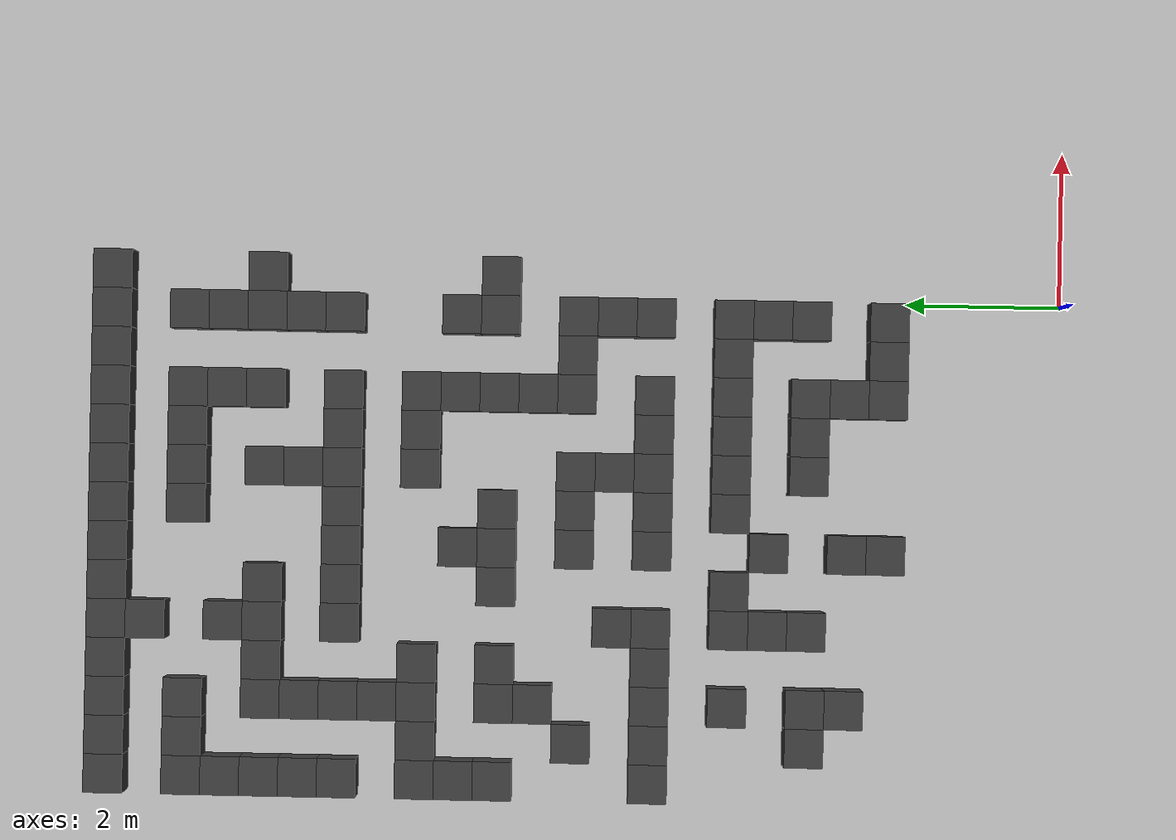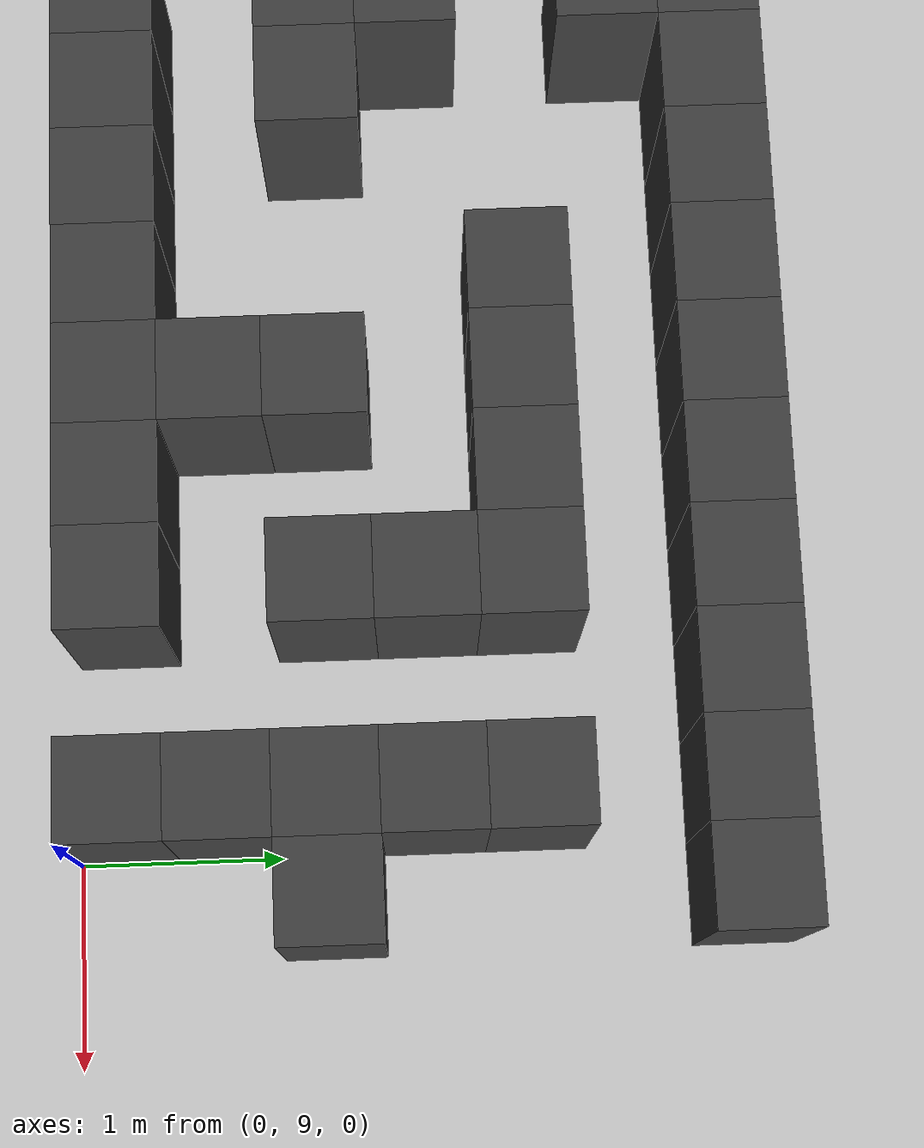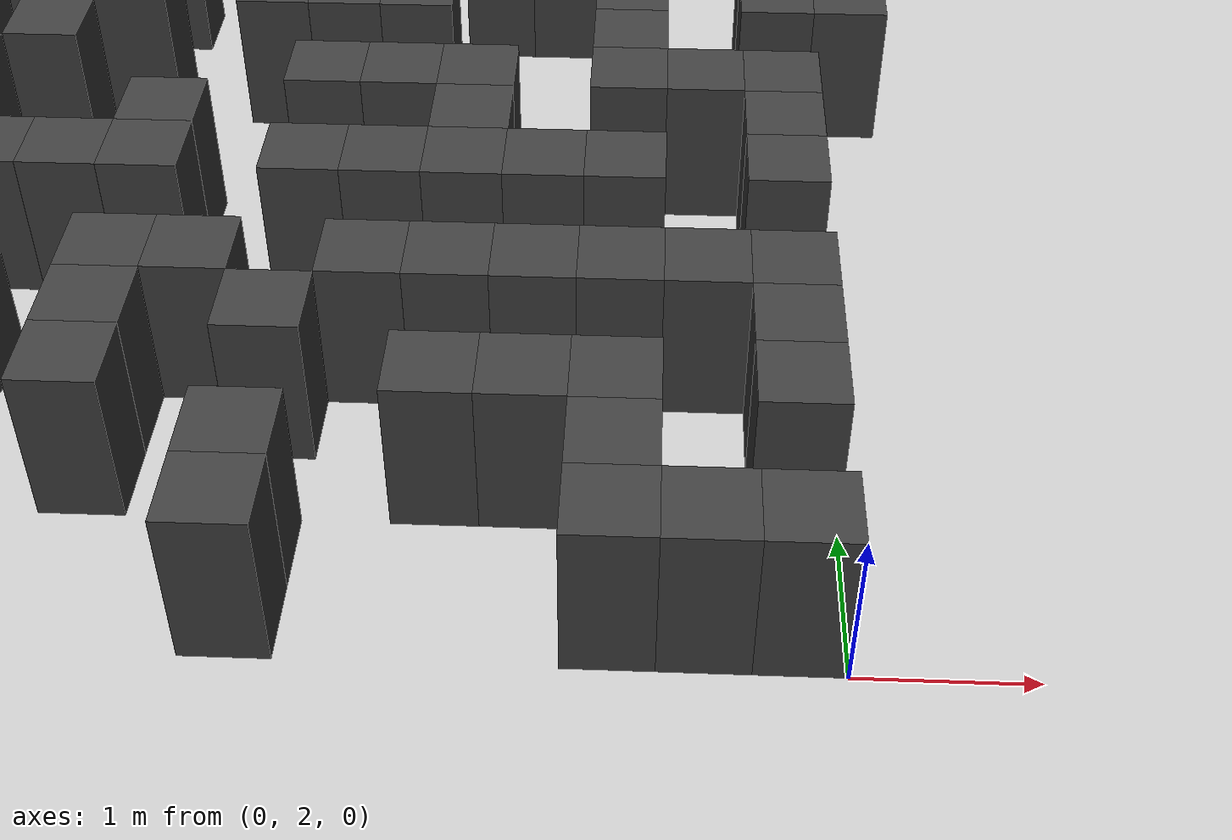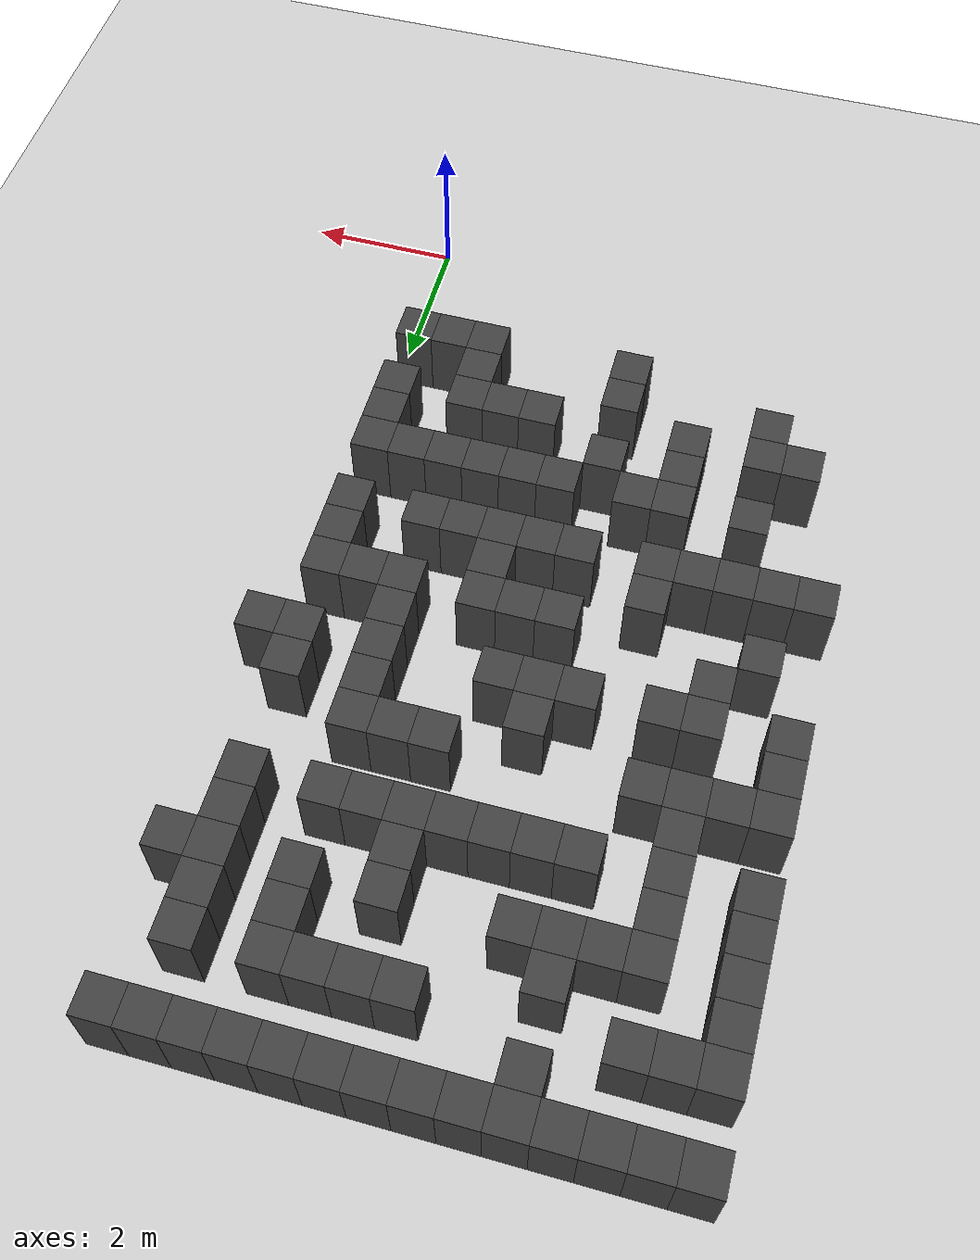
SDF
<sdf version="1.7">
 <world name="map_15168">
  <model name="ground_plane">
   <static>true</static>
   <link name="link">
    <collision name="collision">
     <geometry><plane><normal>0 0 1</normal><size>200 200</size></plane></geometry>
    </collision>
    <visual name="visual">
     <geometry><plane><normal>0 0 1</normal><size>200 200</size></plane></geometry>
     <material><ambient>0.8 0.8 0.8 1</ambient><diffuse>0.8 0.8 0.8 1</diffuse></material>
    </visual>
   </link>
  </model>
  <model name="maze_environment">
   <static>true</static>
   <link name="wall_12">
    <pose>-6.250 12.250 0.500 0 0 0</pose>
    <collision name="col"><geometry><box><size>0.5 0.5 1.0</size></box></geometry></collision>
    <visual name="vis">
     <geometry><box><size>0.5 0.5 1.0</size></box></geometry>
     <material><ambient>0.15 0.15 0.15 1</ambient><diffuse>0.25 0.25 0.25 1</diffuse></material>
    </visual>
   </link>
   <link name="wall_13">
    <pose>-5.750 12.250 0.500 0 0 0</pose>
    <collision name="col"><geometry><box><size>0.5 0.5 1.0</size></box></geometry></collision>
    <visual name="vis">
     <geometry><box><size>0.5 0.5 1.0</size></box></geometry>
     <material><ambient>0.15 0.15 0.15 1</ambient><diffuse>0.25 0.25 0.25 1</diffuse></material>
    </visual>
   </link>
   <link name="wall_14">
    <pose>-5.250 12.250 0.500 0 0 0</pose>
    <collision name="col"><geometry><box><size>0.5 0.5 1.0</size></box></geometry></collision>
    <visual name="vis">
     <geometry><box><size>0.5 0.5 1.0</size></box></geometry>
     <material><ambient>0.15 0.15 0.15 1</ambient><diffuse>0.25 0.25 0.25 1</diffuse></material>
    </visual>
   </link>
   <link name="wall_15">
    <pose>-4.750 12.250 0.500 0 0 0</pose>
    <collision name="col"><geometry><box><size>0.5 0.5 1.0</size></box></geometry></collision>
    <visual name="vis">
     <geometry><box><size>0.5 0.5 1.0</size></box></geometry>
     <material><ambient>0.15 0.15 0.15 1</ambient><diffuse>0.25 0.25 0.25 1</diffuse></material>
    </visual>
   </link>
   <link name="wall_16">
    <pose>-4.250 12.250 0.500 0 0 0</pose>
    <collision name="col"><geometry><box><size>0.5 0.5 1.0</size></box></geometry></collision>
    <visual name="vis">
     <geometry><box><size>0.5 0.5 1.0</size></box></geometry>
     <material><ambient>0.15 0.15 0.15 1</ambient><diffuse>0.25 0.25 0.25 1</diffuse></material>
    </visual>
   </link>
   <link name="wall_17">
    <pose>-3.750 12.250 0.500 0 0 0</pose>
    <collision name="col"><geometry><box><size>0.5 0.5 1.0</size></box></geometry></collision>
    <visual name="vis">
     <geometry><box><size>0.5 0.5 1.0</size></box></geometry>
     <material><ambient>0.15 0.15 0.15 1</ambient><diffuse>0.25 0.25 0.25 1</diffuse></material>
    </visual>
   </link>
   <link name="wall_18">
    <pose>-3.250 12.250 0.500 0 0 0</pose>
    <collision name="col"><geometry><box><size>0.5 0.5 1.0</size></box></geometry></collision>
    <visual name="vis">
     <geometry><box><size>0.5 0.5 1.0</size></box></geometry>
     <material><ambient>0.15 0.15 0.15 1</ambient><diffuse>0.25 0.25 0.25 1</diffuse></material>
    </visual>
   </link>
   <link name="wall_19">
    <pose>-2.750 12.250 0.500 0 0 0</pose>
    <collision name="col"><geometry><box><size>0.5 0.5 1.0</size></box></geometry></collision>
    <visual name="vis">
     <geometry><box><size>0.5 0.5 1.0</size></box></geometry>
     <material><ambient>0.15 0.15 0.15 1</ambient><diffuse>0.25 0.25 0.25 1</diffuse></material>
    </visual>
   </link>
   <link name="wall_20">
    <pose>-2.250 12.250 0.500 0 0 0</pose>
    <collision name="col"><geometry><box><size>0.5 0.5 1.0</size></box></geometry></collision>
    <visual name="vis">
     <geometry><box><size>0.5 0.5 1.0</size></box></geometry>
     <material><ambient>0.15 0.15 0.15 1</ambient><diffuse>0.25 0.25 0.25 1</diffuse></material>
    </visual>
   </link>
   <link name="wall_21">
    <pose>-1.750 12.250 0.500 0 0 0</pose>
    <collision name="col"><geometry><box><size>0.5 0.5 1.0</size></box></geometry></collision>
    <visual name="vis">
     <geometry><box><size>0.5 0.5 1.0</size></box></geometry>
     <material><ambient>0.15 0.15 0.15 1</ambient><diffuse>0.25 0.25 0.25 1</diffuse></material>
    </visual>
   </link>
   <link name="wall_22">
    <pose>-1.250 12.250 0.500 0 0 0</pose>
    <collision name="col"><geometry><box><size>0.5 0.5 1.0</size></box></geometry></collision>
    <visual name="vis">
     <geometry><box><size>0.5 0.5 1.0</size></box></geometry>
     <material><ambient>0.15 0.15 0.15 1</ambient><diffuse>0.25 0.25 0.25 1</diffuse></material>
    </visual>
   </link>
   <link name="wall_23">
    <pose>-0.750 12.250 0.500 0 0 0</pose>
    <collision name="col"><geometry><box><size>0.5 0.5 1.0</size></box></geometry></collision>
    <visual name="vis">
     <geometry><box><size>0.5 0.5 1.0</size></box></geometry>
     <material><ambient>0.15 0.15 0.15 1</ambient><diffuse>0.25 0.25 0.25 1</diffuse></material>
    </visual>
   </link>
   <link name="wall_24">
    <pose>-0.250 12.250 0.500 0 0 0</pose>
    <collision name="col"><geometry><box><size>0.5 0.5 1.0</size></box></geometry></collision>
    <visual name="vis">
     <geometry><box><size>0.5 0.5 1.0</size></box></geometry>
     <material><ambient>0.15 0.15 0.15 1</ambient><diffuse>0.25 0.25 0.25 1</diffuse></material>
    </visual>
   </link>
   <link name="wall_25">
    <pose>0.250 12.250 0.500 0 0 0</pose>
    <collision name="col"><geometry><box><size>0.5 0.5 1.0</size></box></geometry></collision>
    <visual name="vis">
     <geometry><box><size>0.5 0.5 1.0</size></box></geometry>
     <material><ambient>0.15 0.15 0.15 1</ambient><diffuse>0.25 0.25 0.25 1</diffuse></material>
    </visual>
   </link>
   <link name="wall_53">
    <pose>-4.250 11.750 0.500 0 0 0</pose>
    <collision name="col"><geometry><box><size>0.5 0.5 1.0</size></box></geometry></collision>
    <visual name="vis">
     <geometry><box><size>0.5 0.5 1.0</size></box></geometry>
     <material><ambient>0.15 0.15 0.15 1</ambient><diffuse>0.25 0.25 0.25 1</diffuse></material>
    </visual>
   </link>
   <link name="wall_67">
    <pose>-6.250 11.250 0.500 0 0 0</pose>
    <collision name="col"><geometry><box><size>0.5 0.5 1.0</size></box></geometry></collision>
    <visual name="vis">
     <geometry><box><size>0.5 0.5 1.0</size></box></geometry>
     <material><ambient>0.15 0.15 0.15 1</ambient><diffuse>0.25 0.25 0.25 1</diffuse></material>
    </visual>
   </link>
   <link name="wall_68">
    <pose>-5.750 11.250 0.500 0 0 0</pose>
    <collision name="col"><geometry><box><size>0.5 0.5 1.0</size></box></geometry></collision>
    <visual name="vis">
     <geometry><box><size>0.5 0.5 1.0</size></box></geometry>
     <material><ambient>0.15 0.15 0.15 1</ambient><diffuse>0.25 0.25 0.25 1</diffuse></material>
    </visual>
   </link>
   <link name="wall_69">
    <pose>-5.250 11.250 0.500 0 0 0</pose>
    <collision name="col"><geometry><box><size>0.5 0.5 1.0</size></box></geometry></collision>
    <visual name="vis">
     <geometry><box><size>0.5 0.5 1.0</size></box></geometry>
     <material><ambient>0.15 0.15 0.15 1</ambient><diffuse>0.25 0.25 0.25 1</diffuse></material>
    </visual>
   </link>
   <link name="wall_70">
    <pose>-2.750 11.250 0.500 0 0 0</pose>
    <collision name="col"><geometry><box><size>0.5 0.5 1.0</size></box></geometry></collision>
    <visual name="vis">
     <geometry><box><size>0.5 0.5 1.0</size></box></geometry>
     <material><ambient>0.15 0.15 0.15 1</ambient><diffuse>0.25 0.25 0.25 1</diffuse></material>
    </visual>
   </link>
   <link name="wall_71">
    <pose>-2.250 11.250 0.500 0 0 0</pose>
    <collision name="col"><geometry><box><size>0.5 0.5 1.0</size></box></geometry></collision>
    <visual name="vis">
     <geometry><box><size>0.5 0.5 1.0</size></box></geometry>
     <material><ambient>0.15 0.15 0.15 1</ambient><diffuse>0.25 0.25 0.25 1</diffuse></material>
    </visual>
   </link>
   <link name="wall_72">
    <pose>-1.750 11.250 0.500 0 0 0</pose>
    <collision name="col"><geometry><box><size>0.5 0.5 1.0</size></box></geometry></collision>
    <visual name="vis">
     <geometry><box><size>0.5 0.5 1.0</size></box></geometry>
     <material><ambient>0.15 0.15 0.15 1</ambient><diffuse>0.25 0.25 0.25 1</diffuse></material>
    </visual>
   </link>
   <link name="wall_73">
    <pose>-1.250 11.250 0.500 0 0 0</pose>
    <collision name="col"><geometry><box><size>0.5 0.5 1.0</size></box></geometry></collision>
    <visual name="vis">
     <geometry><box><size>0.5 0.5 1.0</size></box></geometry>
     <material><ambient>0.15 0.15 0.15 1</ambient><diffuse>0.25 0.25 0.25 1</diffuse></material>
    </visual>
   </link>
   <link name="wall_74">
    <pose>-0.250 11.250 0.500 0 0 0</pose>
    <collision name="col"><geometry><box><size>0.5 0.5 1.0</size></box></geometry></collision>
    <visual name="vis">
     <geometry><box><size>0.5 0.5 1.0</size></box></geometry>
     <material><ambient>0.15 0.15 0.15 1</ambient><diffuse>0.25 0.25 0.25 1</diffuse></material>
    </visual>
   </link>
   <link name="wall_93">
    <pose>-6.250 10.750 0.500 0 0 0</pose>
    <collision name="col"><geometry><box><size>0.5 0.5 1.0</size></box></geometry></collision>
    <visual name="vis">
     <geometry><box><size>0.5 0.5 1.0</size></box></geometry>
     <material><ambient>0.15 0.15 0.15 1</ambient><diffuse>0.25 0.25 0.25 1</diffuse></material>
    </visual>
   </link>
   <link name="wall_94">
    <pose>-4.250 10.750 0.500 0 0 0</pose>
    <collision name="col"><geometry><box><size>0.5 0.5 1.0</size></box></geometry></collision>
    <visual name="vis">
     <geometry><box><size>0.5 0.5 1.0</size></box></geometry>
     <material><ambient>0.15 0.15 0.15 1</ambient><diffuse>0.25 0.25 0.25 1</diffuse></material>
    </visual>
   </link>
   <link name="wall_95">
    <pose>-1.250 10.750 0.500 0 0 0</pose>
    <collision name="col"><geometry><box><size>0.5 0.5 1.0</size></box></geometry></collision>
    <visual name="vis">
     <geometry><box><size>0.5 0.5 1.0</size></box></geometry>
     <material><ambient>0.15 0.15 0.15 1</ambient><diffuse>0.25 0.25 0.25 1</diffuse></material>
    </visual>
   </link>
   <link name="wall_96">
    <pose>-0.250 10.750 0.500 0 0 0</pose>
    <collision name="col"><geometry><box><size>0.5 0.5 1.0</size></box></geometry></collision>
    <visual name="vis">
     <geometry><box><size>0.5 0.5 1.0</size></box></geometry>
     <material><ambient>0.15 0.15 0.15 1</ambient><diffuse>0.25 0.25 0.25 1</diffuse></material>
    </visual>
   </link>
   <link name="wall_114">
    <pose>-6.250 10.250 0.500 0 0 0</pose>
    <collision name="col"><geometry><box><size>0.5 0.5 1.0</size></box></geometry></collision>
    <visual name="vis">
     <geometry><box><size>0.5 0.5 1.0</size></box></geometry>
     <material><ambient>0.15 0.15 0.15 1</ambient><diffuse>0.25 0.25 0.25 1</diffuse></material>
    </visual>
   </link>
   <link name="wall_115">
    <pose>-5.250 10.250 0.500 0 0 0</pose>
    <collision name="col"><geometry><box><size>0.5 0.5 1.0</size></box></geometry></collision>
    <visual name="vis">
     <geometry><box><size>0.5 0.5 1.0</size></box></geometry>
     <material><ambient>0.15 0.15 0.15 1</ambient><diffuse>0.25 0.25 0.25 1</diffuse></material>
    </visual>
   </link>
   <link name="wall_116">
    <pose>-4.750 10.250 0.500 0 0 0</pose>
    <collision name="col"><geometry><box><size>0.5 0.5 1.0</size></box></geometry></collision>
    <visual name="vis">
     <geometry><box><size>0.5 0.5 1.0</size></box></geometry>
     <material><ambient>0.15 0.15 0.15 1</ambient><diffuse>0.25 0.25 0.25 1</diffuse></material>
    </visual>
   </link>
   <link name="wall_117">
    <pose>-4.250 10.250 0.500 0 0 0</pose>
    <collision name="col"><geometry><box><size>0.5 0.5 1.0</size></box></geometry></collision>
    <visual name="vis">
     <geometry><box><size>0.5 0.5 1.0</size></box></geometry>
     <material><ambient>0.15 0.15 0.15 1</ambient><diffuse>0.25 0.25 0.25 1</diffuse></material>
    </visual>
   </link>
   <link name="wall_118">
    <pose>-3.750 10.250 0.500 0 0 0</pose>
    <collision name="col"><geometry><box><size>0.5 0.5 1.0</size></box></geometry></collision>
    <visual name="vis">
     <geometry><box><size>0.5 0.5 1.0</size></box></geometry>
     <material><ambient>0.15 0.15 0.15 1</ambient><diffuse>0.25 0.25 0.25 1</diffuse></material>
    </visual>
   </link>
   <link name="wall_119">
    <pose>-2.250 10.250 0.500 0 0 0</pose>
    <collision name="col"><geometry><box><size>0.5 0.5 1.0</size></box></geometry></collision>
    <visual name="vis">
     <geometry><box><size>0.5 0.5 1.0</size></box></geometry>
     <material><ambient>0.15 0.15 0.15 1</ambient><diffuse>0.25 0.25 0.25 1</diffuse></material>
    </visual>
   </link>
   <link name="wall_120">
    <pose>-1.250 10.250 0.500 0 0 0</pose>
    <collision name="col"><geometry><box><size>0.5 0.5 1.0</size></box></geometry></collision>
    <visual name="vis">
     <geometry><box><size>0.5 0.5 1.0</size></box></geometry>
     <material><ambient>0.15 0.15 0.15 1</ambient><diffuse>0.25 0.25 0.25 1</diffuse></material>
    </visual>
   </link>
   <link name="wall_121">
    <pose>-0.250 10.250 0.500 0 0 0</pose>
    <collision name="col"><geometry><box><size>0.5 0.5 1.0</size></box></geometry></collision>
    <visual name="vis">
     <geometry><box><size>0.5 0.5 1.0</size></box></geometry>
     <material><ambient>0.15 0.15 0.15 1</ambient><diffuse>0.25 0.25 0.25 1</diffuse></material>
    </visual>
   </link>
   <link name="wall_122">
    <pose>0.250 10.250 0.500 0 0 0</pose>
    <collision name="col"><geometry><box><size>0.5 0.5 1.0</size></box></geometry></collision>
    <visual name="vis">
     <geometry><box><size>0.5 0.5 1.0</size></box></geometry>
     <material><ambient>0.15 0.15 0.15 1</ambient><diffuse>0.25 0.25 0.25 1</diffuse></material>
    </visual>
   </link>
   <link name="wall_141">
    <pose>-6.250 9.750 0.500 0 0 0</pose>
    <collision name="col"><geometry><box><size>0.5 0.5 1.0</size></box></geometry></collision>
    <visual name="vis">
     <geometry><box><size>0.5 0.5 1.0</size></box></geometry>
     <material><ambient>0.15 0.15 0.15 1</ambient><diffuse>0.25 0.25 0.25 1</diffuse></material>
    </visual>
   </link>
   <link name="wall_142">
    <pose>-5.250 9.750 0.500 0 0 0</pose>
    <collision name="col"><geometry><box><size>0.5 0.5 1.0</size></box></geometry></collision>
    <visual name="vis">
     <geometry><box><size>0.5 0.5 1.0</size></box></geometry>
     <material><ambient>0.15 0.15 0.15 1</ambient><diffuse>0.25 0.25 0.25 1</diffuse></material>
    </visual>
   </link>
   <link name="wall_143">
    <pose>-2.250 9.750 0.500 0 0 0</pose>
    <collision name="col"><geometry><box><size>0.5 0.5 1.0</size></box></geometry></collision>
    <visual name="vis">
     <geometry><box><size>0.5 0.5 1.0</size></box></geometry>
     <material><ambient>0.15 0.15 0.15 1</ambient><diffuse>0.25 0.25 0.25 1</diffuse></material>
    </visual>
   </link>
   <link name="wall_144">
    <pose>-0.250 9.750 0.500 0 0 0</pose>
    <collision name="col"><geometry><box><size>0.5 0.5 1.0</size></box></geometry></collision>
    <visual name="vis">
     <geometry><box><size>0.5 0.5 1.0</size></box></geometry>
     <material><ambient>0.15 0.15 0.15 1</ambient><diffuse>0.25 0.25 0.25 1</diffuse></material>
    </visual>
   </link>
   <link name="wall_161">
    <pose>-6.250 9.250 0.500 0 0 0</pose>
    <collision name="col"><geometry><box><size>0.5 0.5 1.0</size></box></geometry></collision>
    <visual name="vis">
     <geometry><box><size>0.5 0.5 1.0</size></box></geometry>
     <material><ambient>0.15 0.15 0.15 1</ambient><diffuse>0.25 0.25 0.25 1</diffuse></material>
    </visual>
   </link>
   <link name="wall_162">
    <pose>-5.250 9.250 0.500 0 0 0</pose>
    <collision name="col"><geometry><box><size>0.5 0.5 1.0</size></box></geometry></collision>
    <visual name="vis">
     <geometry><box><size>0.5 0.5 1.0</size></box></geometry>
     <material><ambient>0.15 0.15 0.15 1</ambient><diffuse>0.25 0.25 0.25 1</diffuse></material>
    </visual>
   </link>
   <link name="wall_163">
    <pose>-4.250 9.250 0.500 0 0 0</pose>
    <collision name="col"><geometry><box><size>0.5 0.5 1.0</size></box></geometry></collision>
    <visual name="vis">
     <geometry><box><size>0.5 0.5 1.0</size></box></geometry>
     <material><ambient>0.15 0.15 0.15 1</ambient><diffuse>0.25 0.25 0.25 1</diffuse></material>
    </visual>
   </link>
   <link name="wall_164">
    <pose>-3.750 9.250 0.500 0 0 0</pose>
    <collision name="col"><geometry><box><size>0.5 0.5 1.0</size></box></geometry></collision>
    <visual name="vis">
     <geometry><box><size>0.5 0.5 1.0</size></box></geometry>
     <material><ambient>0.15 0.15 0.15 1</ambient><diffuse>0.25 0.25 0.25 1</diffuse></material>
    </visual>
   </link>
   <link name="wall_165">
    <pose>-3.250 9.250 0.500 0 0 0</pose>
    <collision name="col"><geometry><box><size>0.5 0.5 1.0</size></box></geometry></collision>
    <visual name="vis">
     <geometry><box><size>0.5 0.5 1.0</size></box></geometry>
     <material><ambient>0.15 0.15 0.15 1</ambient><diffuse>0.25 0.25 0.25 1</diffuse></material>
    </visual>
   </link>
   <link name="wall_166">
    <pose>-2.750 9.250 0.500 0 0 0</pose>
    <collision name="col"><geometry><box><size>0.5 0.5 1.0</size></box></geometry></collision>
    <visual name="vis">
     <geometry><box><size>0.5 0.5 1.0</size></box></geometry>
     <material><ambient>0.15 0.15 0.15 1</ambient><diffuse>0.25 0.25 0.25 1</diffuse></material>
    </visual>
   </link>
   <link name="wall_167">
    <pose>-2.250 9.250 0.500 0 0 0</pose>
    <collision name="col"><geometry><box><size>0.5 0.5 1.0</size></box></geometry></collision>
    <visual name="vis">
     <geometry><box><size>0.5 0.5 1.0</size></box></geometry>
     <material><ambient>0.15 0.15 0.15 1</ambient><diffuse>0.25 0.25 0.25 1</diffuse></material>
    </visual>
   </link>
   <link name="wall_168">
    <pose>-1.750 9.250 0.500 0 0 0</pose>
    <collision name="col"><geometry><box><size>0.5 0.5 1.0</size></box></geometry></collision>
    <visual name="vis">
     <geometry><box><size>0.5 0.5 1.0</size></box></geometry>
     <material><ambient>0.15 0.15 0.15 1</ambient><diffuse>0.25 0.25 0.25 1</diffuse></material>
    </visual>
   </link>
   <link name="wall_169">
    <pose>-1.250 9.250 0.500 0 0 0</pose>
    <collision name="col"><geometry><box><size>0.5 0.5 1.0</size></box></geometry></collision>
    <visual name="vis">
     <geometry><box><size>0.5 0.5 1.0</size></box></geometry>
     <material><ambient>0.15 0.15 0.15 1</ambient><diffuse>0.25 0.25 0.25 1</diffuse></material>
    </visual>
   </link>
   <link name="wall_170">
    <pose>-0.250 9.250 0.500 0 0 0</pose>
    <collision name="col"><geometry><box><size>0.5 0.5 1.0</size></box></geometry></collision>
    <visual name="vis">
     <geometry><box><size>0.5 0.5 1.0</size></box></geometry>
     <material><ambient>0.15 0.15 0.15 1</ambient><diffuse>0.25 0.25 0.25 1</diffuse></material>
    </visual>
   </link>
   <link name="wall_192">
    <pose>-5.250 8.750 0.500 0 0 0</pose>
    <collision name="col"><geometry><box><size>0.5 0.5 1.0</size></box></geometry></collision>
    <visual name="vis">
     <geometry><box><size>0.5 0.5 1.0</size></box></geometry>
     <material><ambient>0.15 0.15 0.15 1</ambient><diffuse>0.25 0.25 0.25 1</diffuse></material>
    </visual>
   </link>
   <link name="wall_210">
    <pose>-6.250 8.250 0.500 0 0 0</pose>
    <collision name="col"><geometry><box><size>0.5 0.5 1.0</size></box></geometry></collision>
    <visual name="vis">
     <geometry><box><size>0.5 0.5 1.0</size></box></geometry>
     <material><ambient>0.15 0.15 0.15 1</ambient><diffuse>0.25 0.25 0.25 1</diffuse></material>
    </visual>
   </link>
   <link name="wall_211">
    <pose>-5.750 8.250 0.500 0 0 0</pose>
    <collision name="col"><geometry><box><size>0.5 0.5 1.0</size></box></geometry></collision>
    <visual name="vis">
     <geometry><box><size>0.5 0.5 1.0</size></box></geometry>
     <material><ambient>0.15 0.15 0.15 1</ambient><diffuse>0.25 0.25 0.25 1</diffuse></material>
    </visual>
   </link>
   <link name="wall_212">
    <pose>-5.250 8.250 0.500 0 0 0</pose>
    <collision name="col"><geometry><box><size>0.5 0.5 1.0</size></box></geometry></collision>
    <visual name="vis">
     <geometry><box><size>0.5 0.5 1.0</size></box></geometry>
     <material><ambient>0.15 0.15 0.15 1</ambient><diffuse>0.25 0.25 0.25 1</diffuse></material>
    </visual>
   </link>
   <link name="wall_213">
    <pose>-4.750 8.250 0.500 0 0 0</pose>
    <collision name="col"><geometry><box><size>0.5 0.5 1.0</size></box></geometry></collision>
    <visual name="vis">
     <geometry><box><size>0.5 0.5 1.0</size></box></geometry>
     <material><ambient>0.15 0.15 0.15 1</ambient><diffuse>0.25 0.25 0.25 1</diffuse></material>
    </visual>
   </link>
   <link name="wall_214">
    <pose>-2.250 8.250 0.500 0 0 0</pose>
    <collision name="col"><geometry><box><size>0.5 0.5 1.0</size></box></geometry></collision>
    <visual name="vis">
     <geometry><box><size>0.5 0.5 1.0</size></box></geometry>
     <material><ambient>0.15 0.15 0.15 1</ambient><diffuse>0.25 0.25 0.25 1</diffuse></material>
    </visual>
   </link>
   <link name="wall_215">
    <pose>-1.750 8.250 0.500 0 0 0</pose>
    <collision name="col"><geometry><box><size>0.5 0.5 1.0</size></box></geometry></collision>
    <visual name="vis">
     <geometry><box><size>0.5 0.5 1.0</size></box></geometry>
     <material><ambient>0.15 0.15 0.15 1</ambient><diffuse>0.25 0.25 0.25 1</diffuse></material>
    </visual>
   </link>
   <link name="wall_216">
    <pose>-1.250 8.250 0.500 0 0 0</pose>
    <collision name="col"><geometry><box><size>0.5 0.5 1.0</size></box></geometry></collision>
    <visual name="vis">
     <geometry><box><size>0.5 0.5 1.0</size></box></geometry>
     <material><ambient>0.15 0.15 0.15 1</ambient><diffuse>0.25 0.25 0.25 1</diffuse></material>
    </visual>
   </link>
   <link name="wall_235">
    <pose>-6.250 7.750 0.500 0 0 0</pose>
    <collision name="col"><geometry><box><size>0.5 0.5 1.0</size></box></geometry></collision>
    <visual name="vis">
     <geometry><box><size>0.5 0.5 1.0</size></box></geometry>
     <material><ambient>0.15 0.15 0.15 1</ambient><diffuse>0.25 0.25 0.25 1</diffuse></material>
    </visual>
   </link>
   <link name="wall_236">
    <pose>-3.250 7.750 0.500 0 0 0</pose>
    <collision name="col"><geometry><box><size>0.5 0.5 1.0</size></box></geometry></collision>
    <visual name="vis">
     <geometry><box><size>0.5 0.5 1.0</size></box></geometry>
     <material><ambient>0.15 0.15 0.15 1</ambient><diffuse>0.25 0.25 0.25 1</diffuse></material>
    </visual>
   </link>
   <link name="wall_237">
    <pose>-1.250 7.750 0.500 0 0 0</pose>
    <collision name="col"><geometry><box><size>0.5 0.5 1.0</size></box></geometry></collision>
    <visual name="vis">
     <geometry><box><size>0.5 0.5 1.0</size></box></geometry>
     <material><ambient>0.15 0.15 0.15 1</ambient><diffuse>0.25 0.25 0.25 1</diffuse></material>
    </visual>
   </link>
   <link name="wall_238">
    <pose>-0.250 7.750 0.500 0 0 0</pose>
    <collision name="col"><geometry><box><size>0.5 0.5 1.0</size></box></geometry></collision>
    <visual name="vis">
     <geometry><box><size>0.5 0.5 1.0</size></box></geometry>
     <material><ambient>0.15 0.15 0.15 1</ambient><diffuse>0.25 0.25 0.25 1</diffuse></material>
    </visual>
   </link>
   <link name="wall_252">
    <pose>-6.250 7.250 0.500 0 0 0</pose>
    <collision name="col"><geometry><box><size>0.5 0.5 1.0</size></box></geometry></collision>
    <visual name="vis">
     <geometry><box><size>0.5 0.5 1.0</size></box></geometry>
     <material><ambient>0.15 0.15 0.15 1</ambient><diffuse>0.25 0.25 0.25 1</diffuse></material>
    </visual>
   </link>
   <link name="wall_253">
    <pose>-5.250 7.250 0.500 0 0 0</pose>
    <collision name="col"><geometry><box><size>0.5 0.5 1.0</size></box></geometry></collision>
    <visual name="vis">
     <geometry><box><size>0.5 0.5 1.0</size></box></geometry>
     <material><ambient>0.15 0.15 0.15 1</ambient><diffuse>0.25 0.25 0.25 1</diffuse></material>
    </visual>
   </link>
   <link name="wall_254">
    <pose>-4.750 7.250 0.500 0 0 0</pose>
    <collision name="col"><geometry><box><size>0.5 0.5 1.0</size></box></geometry></collision>
    <visual name="vis">
     <geometry><box><size>0.5 0.5 1.0</size></box></geometry>
     <material><ambient>0.15 0.15 0.15 1</ambient><diffuse>0.25 0.25 0.25 1</diffuse></material>
    </visual>
   </link>
   <link name="wall_255">
    <pose>-3.750 7.250 0.500 0 0 0</pose>
    <collision name="col"><geometry><box><size>0.5 0.5 1.0</size></box></geometry></collision>
    <visual name="vis">
     <geometry><box><size>0.5 0.5 1.0</size></box></geometry>
     <material><ambient>0.15 0.15 0.15 1</ambient><diffuse>0.25 0.25 0.25 1</diffuse></material>
    </visual>
   </link>
   <link name="wall_256">
    <pose>-3.250 7.250 0.500 0 0 0</pose>
    <collision name="col"><geometry><box><size>0.5 0.5 1.0</size></box></geometry></collision>
    <visual name="vis">
     <geometry><box><size>0.5 0.5 1.0</size></box></geometry>
     <material><ambient>0.15 0.15 0.15 1</ambient><diffuse>0.25 0.25 0.25 1</diffuse></material>
    </visual>
   </link>
   <link name="wall_257">
    <pose>-2.750 7.250 0.500 0 0 0</pose>
    <collision name="col"><geometry><box><size>0.5 0.5 1.0</size></box></geometry></collision>
    <visual name="vis">
     <geometry><box><size>0.5 0.5 1.0</size></box></geometry>
     <material><ambient>0.15 0.15 0.15 1</ambient><diffuse>0.25 0.25 0.25 1</diffuse></material>
    </visual>
   </link>
   <link name="wall_258">
    <pose>-1.250 7.250 0.500 0 0 0</pose>
    <collision name="col"><geometry><box><size>0.5 0.5 1.0</size></box></geometry></collision>
    <visual name="vis">
     <geometry><box><size>0.5 0.5 1.0</size></box></geometry>
     <material><ambient>0.15 0.15 0.15 1</ambient><diffuse>0.25 0.25 0.25 1</diffuse></material>
    </visual>
   </link>
   <link name="wall_259">
    <pose>-0.250 7.250 0.500 0 0 0</pose>
    <collision name="col"><geometry><box><size>0.5 0.5 1.0</size></box></geometry></collision>
    <visual name="vis">
     <geometry><box><size>0.5 0.5 1.0</size></box></geometry>
     <material><ambient>0.15 0.15 0.15 1</ambient><diffuse>0.25 0.25 0.25 1</diffuse></material>
    </visual>
   </link>
   <link name="wall_260">
    <pose>0.250 7.250 0.500 0 0 0</pose>
    <collision name="col"><geometry><box><size>0.5 0.5 1.0</size></box></geometry></collision>
    <visual name="vis">
     <geometry><box><size>0.5 0.5 1.0</size></box></geometry>
     <material><ambient>0.15 0.15 0.15 1</ambient><diffuse>0.25 0.25 0.25 1</diffuse></material>
    </visual>
   </link>
   <link name="wall_281">
    <pose>-5.250 6.750 0.500 0 0 0</pose>
    <collision name="col"><geometry><box><size>0.5 0.5 1.0</size></box></geometry></collision>
    <visual name="vis">
     <geometry><box><size>0.5 0.5 1.0</size></box></geometry>
     <material><ambient>0.15 0.15 0.15 1</ambient><diffuse>0.25 0.25 0.25 1</diffuse></material>
    </visual>
   </link>
   <link name="wall_282">
    <pose>-1.250 6.750 0.500 0 0 0</pose>
    <collision name="col"><geometry><box><size>0.5 0.5 1.0</size></box></geometry></collision>
    <visual name="vis">
     <geometry><box><size>0.5 0.5 1.0</size></box></geometry>
     <material><ambient>0.15 0.15 0.15 1</ambient><diffuse>0.25 0.25 0.25 1</diffuse></material>
    </visual>
   </link>
   <link name="wall_298">
    <pose>-5.750 6.250 0.500 0 0 0</pose>
    <collision name="col"><geometry><box><size>0.5 0.5 1.0</size></box></geometry></collision>
    <visual name="vis">
     <geometry><box><size>0.5 0.5 1.0</size></box></geometry>
     <material><ambient>0.15 0.15 0.15 1</ambient><diffuse>0.25 0.25 0.25 1</diffuse></material>
    </visual>
   </link>
   <link name="wall_299">
    <pose>-3.250 6.250 0.500 0 0 0</pose>
    <collision name="col"><geometry><box><size>0.5 0.5 1.0</size></box></geometry></collision>
    <visual name="vis">
     <geometry><box><size>0.5 0.5 1.0</size></box></geometry>
     <material><ambient>0.15 0.15 0.15 1</ambient><diffuse>0.25 0.25 0.25 1</diffuse></material>
    </visual>
   </link>
   <link name="wall_300">
    <pose>-2.750 6.250 0.500 0 0 0</pose>
    <collision name="col"><geometry><box><size>0.5 0.5 1.0</size></box></geometry></collision>
    <visual name="vis">
     <geometry><box><size>0.5 0.5 1.0</size></box></geometry>
     <material><ambient>0.15 0.15 0.15 1</ambient><diffuse>0.25 0.25 0.25 1</diffuse></material>
    </visual>
   </link>
   <link name="wall_301">
    <pose>-2.250 6.250 0.500 0 0 0</pose>
    <collision name="col"><geometry><box><size>0.5 0.5 1.0</size></box></geometry></collision>
    <visual name="vis">
     <geometry><box><size>0.5 0.5 1.0</size></box></geometry>
     <material><ambient>0.15 0.15 0.15 1</ambient><diffuse>0.25 0.25 0.25 1</diffuse></material>
    </visual>
   </link>
   <link name="wall_302">
    <pose>-1.250 6.250 0.500 0 0 0</pose>
    <collision name="col"><geometry><box><size>0.5 0.5 1.0</size></box></geometry></collision>
    <visual name="vis">
     <geometry><box><size>0.5 0.5 1.0</size></box></geometry>
     <material><ambient>0.15 0.15 0.15 1</ambient><diffuse>0.25 0.25 0.25 1</diffuse></material>
    </visual>
   </link>
   <link name="wall_303">
    <pose>-0.750 6.250 0.500 0 0 0</pose>
    <collision name="col"><geometry><box><size>0.5 0.5 1.0</size></box></geometry></collision>
    <visual name="vis">
     <geometry><box><size>0.5 0.5 1.0</size></box></geometry>
     <material><ambient>0.15 0.15 0.15 1</ambient><diffuse>0.25 0.25 0.25 1</diffuse></material>
    </visual>
   </link>
   <link name="wall_304">
    <pose>-0.250 6.250 0.500 0 0 0</pose>
    <collision name="col"><geometry><box><size>0.5 0.5 1.0</size></box></geometry></collision>
    <visual name="vis">
     <geometry><box><size>0.5 0.5 1.0</size></box></geometry>
     <material><ambient>0.15 0.15 0.15 1</ambient><diffuse>0.25 0.25 0.25 1</diffuse></material>
    </visual>
   </link>
   <link name="wall_325">
    <pose>-4.250 5.750 0.500 0 0 0</pose>
    <collision name="col"><geometry><box><size>0.5 0.5 1.0</size></box></geometry></collision>
    <visual name="vis">
     <geometry><box><size>0.5 0.5 1.0</size></box></geometry>
     <material><ambient>0.15 0.15 0.15 1</ambient><diffuse>0.25 0.25 0.25 1</diffuse></material>
    </visual>
   </link>
   <link name="wall_326">
    <pose>-2.250 5.750 0.500 0 0 0</pose>
    <collision name="col"><geometry><box><size>0.5 0.5 1.0</size></box></geometry></collision>
    <visual name="vis">
     <geometry><box><size>0.5 0.5 1.0</size></box></geometry>
     <material><ambient>0.15 0.15 0.15 1</ambient><diffuse>0.25 0.25 0.25 1</diffuse></material>
    </visual>
   </link>
   <link name="wall_327">
    <pose>-0.250 5.750 0.500 0 0 0</pose>
    <collision name="col"><geometry><box><size>0.5 0.5 1.0</size></box></geometry></collision>
    <visual name="vis">
     <geometry><box><size>0.5 0.5 1.0</size></box></geometry>
     <material><ambient>0.15 0.15 0.15 1</ambient><diffuse>0.25 0.25 0.25 1</diffuse></material>
    </visual>
   </link>
   <link name="wall_342">
    <pose>-6.250 5.250 0.500 0 0 0</pose>
    <collision name="col"><geometry><box><size>0.5 0.5 1.0</size></box></geometry></collision>
    <visual name="vis">
     <geometry><box><size>0.5 0.5 1.0</size></box></geometry>
     <material><ambient>0.15 0.15 0.15 1</ambient><diffuse>0.25 0.25 0.25 1</diffuse></material>
    </visual>
   </link>
   <link name="wall_343">
    <pose>-5.750 5.250 0.500 0 0 0</pose>
    <collision name="col"><geometry><box><size>0.5 0.5 1.0</size></box></geometry></collision>
    <visual name="vis">
     <geometry><box><size>0.5 0.5 1.0</size></box></geometry>
     <material><ambient>0.15 0.15 0.15 1</ambient><diffuse>0.25 0.25 0.25 1</diffuse></material>
    </visual>
   </link>
   <link name="wall_344">
    <pose>-5.250 5.250 0.500 0 0 0</pose>
    <collision name="col"><geometry><box><size>0.5 0.5 1.0</size></box></geometry></collision>
    <visual name="vis">
     <geometry><box><size>0.5 0.5 1.0</size></box></geometry>
     <material><ambient>0.15 0.15 0.15 1</ambient><diffuse>0.25 0.25 0.25 1</diffuse></material>
    </visual>
   </link>
   <link name="wall_345">
    <pose>-4.750 5.250 0.500 0 0 0</pose>
    <collision name="col"><geometry><box><size>0.5 0.5 1.0</size></box></geometry></collision>
    <visual name="vis">
     <geometry><box><size>0.5 0.5 1.0</size></box></geometry>
     <material><ambient>0.15 0.15 0.15 1</ambient><diffuse>0.25 0.25 0.25 1</diffuse></material>
    </visual>
   </link>
   <link name="wall_346">
    <pose>-4.250 5.250 0.500 0 0 0</pose>
    <collision name="col"><geometry><box><size>0.5 0.5 1.0</size></box></geometry></collision>
    <visual name="vis">
     <geometry><box><size>0.5 0.5 1.0</size></box></geometry>
     <material><ambient>0.15 0.15 0.15 1</ambient><diffuse>0.25 0.25 0.25 1</diffuse></material>
    </visual>
   </link>
   <link name="wall_347">
    <pose>-3.250 5.250 0.500 0 0 0</pose>
    <collision name="col"><geometry><box><size>0.5 0.5 1.0</size></box></geometry></collision>
    <visual name="vis">
     <geometry><box><size>0.5 0.5 1.0</size></box></geometry>
     <material><ambient>0.15 0.15 0.15 1</ambient><diffuse>0.25 0.25 0.25 1</diffuse></material>
    </visual>
   </link>
   <link name="wall_348">
    <pose>-2.750 5.250 0.500 0 0 0</pose>
    <collision name="col"><geometry><box><size>0.5 0.5 1.0</size></box></geometry></collision>
    <visual name="vis">
     <geometry><box><size>0.5 0.5 1.0</size></box></geometry>
     <material><ambient>0.15 0.15 0.15 1</ambient><diffuse>0.25 0.25 0.25 1</diffuse></material>
    </visual>
   </link>
   <link name="wall_349">
    <pose>-2.250 5.250 0.500 0 0 0</pose>
    <collision name="col"><geometry><box><size>0.5 0.5 1.0</size></box></geometry></collision>
    <visual name="vis">
     <geometry><box><size>0.5 0.5 1.0</size></box></geometry>
     <material><ambient>0.15 0.15 0.15 1</ambient><diffuse>0.25 0.25 0.25 1</diffuse></material>
    </visual>
   </link>
   <link name="wall_350">
    <pose>-1.750 5.250 0.500 0 0 0</pose>
    <collision name="col"><geometry><box><size>0.5 0.5 1.0</size></box></geometry></collision>
    <visual name="vis">
     <geometry><box><size>0.5 0.5 1.0</size></box></geometry>
     <material><ambient>0.15 0.15 0.15 1</ambient><diffuse>0.25 0.25 0.25 1</diffuse></material>
    </visual>
   </link>
   <link name="wall_351">
    <pose>-1.250 5.250 0.500 0 0 0</pose>
    <collision name="col"><geometry><box><size>0.5 0.5 1.0</size></box></geometry></collision>
    <visual name="vis">
     <geometry><box><size>0.5 0.5 1.0</size></box></geometry>
     <material><ambient>0.15 0.15 0.15 1</ambient><diffuse>0.25 0.25 0.25 1</diffuse></material>
    </visual>
   </link>
   <link name="wall_352">
    <pose>-0.250 5.250 0.500 0 0 0</pose>
    <collision name="col"><geometry><box><size>0.5 0.5 1.0</size></box></geometry></collision>
    <visual name="vis">
     <geometry><box><size>0.5 0.5 1.0</size></box></geometry>
     <material><ambient>0.15 0.15 0.15 1</ambient><diffuse>0.25 0.25 0.25 1</diffuse></material>
    </visual>
   </link>
   <link name="wall_389">
    <pose>-5.250 4.250 0.500 0 0 0</pose>
    <collision name="col"><geometry><box><size>0.5 0.5 1.0</size></box></geometry></collision>
    <visual name="vis">
     <geometry><box><size>0.5 0.5 1.0</size></box></geometry>
     <material><ambient>0.15 0.15 0.15 1</ambient><diffuse>0.25 0.25 0.25 1</diffuse></material>
    </visual>
   </link>
   <link name="wall_390">
    <pose>-4.250 4.250 0.500 0 0 0</pose>
    <collision name="col"><geometry><box><size>0.5 0.5 1.0</size></box></geometry></collision>
    <visual name="vis">
     <geometry><box><size>0.5 0.5 1.0</size></box></geometry>
     <material><ambient>0.15 0.15 0.15 1</ambient><diffuse>0.25 0.25 0.25 1</diffuse></material>
    </visual>
   </link>
   <link name="wall_391">
    <pose>-3.750 4.250 0.500 0 0 0</pose>
    <collision name="col"><geometry><box><size>0.5 0.5 1.0</size></box></geometry></collision>
    <visual name="vis">
     <geometry><box><size>0.5 0.5 1.0</size></box></geometry>
     <material><ambient>0.15 0.15 0.15 1</ambient><diffuse>0.25 0.25 0.25 1</diffuse></material>
    </visual>
   </link>
   <link name="wall_392">
    <pose>-2.750 4.250 0.500 0 0 0</pose>
    <collision name="col"><geometry><box><size>0.5 0.5 1.0</size></box></geometry></collision>
    <visual name="vis">
     <geometry><box><size>0.5 0.5 1.0</size></box></geometry>
     <material><ambient>0.15 0.15 0.15 1</ambient><diffuse>0.25 0.25 0.25 1</diffuse></material>
    </visual>
   </link>
   <link name="wall_393">
    <pose>-2.250 4.250 0.500 0 0 0</pose>
    <collision name="col"><geometry><box><size>0.5 0.5 1.0</size></box></geometry></collision>
    <visual name="vis">
     <geometry><box><size>0.5 0.5 1.0</size></box></geometry>
     <material><ambient>0.15 0.15 0.15 1</ambient><diffuse>0.25 0.25 0.25 1</diffuse></material>
    </visual>
   </link>
   <link name="wall_394">
    <pose>-1.750 4.250 0.500 0 0 0</pose>
    <collision name="col"><geometry><box><size>0.5 0.5 1.0</size></box></geometry></collision>
    <visual name="vis">
     <geometry><box><size>0.5 0.5 1.0</size></box></geometry>
     <material><ambient>0.15 0.15 0.15 1</ambient><diffuse>0.25 0.25 0.25 1</diffuse></material>
    </visual>
   </link>
   <link name="wall_395">
    <pose>-1.250 4.250 0.500 0 0 0</pose>
    <collision name="col"><geometry><box><size>0.5 0.5 1.0</size></box></geometry></collision>
    <visual name="vis">
     <geometry><box><size>0.5 0.5 1.0</size></box></geometry>
     <material><ambient>0.15 0.15 0.15 1</ambient><diffuse>0.25 0.25 0.25 1</diffuse></material>
    </visual>
   </link>
   <link name="wall_396">
    <pose>-0.750 4.250 0.500 0 0 0</pose>
    <collision name="col"><geometry><box><size>0.5 0.5 1.0</size></box></geometry></collision>
    <visual name="vis">
     <geometry><box><size>0.5 0.5 1.0</size></box></geometry>
     <material><ambient>0.15 0.15 0.15 1</ambient><diffuse>0.25 0.25 0.25 1</diffuse></material>
    </visual>
   </link>
   <link name="wall_397">
    <pose>-0.250 4.250 0.500 0 0 0</pose>
    <collision name="col"><geometry><box><size>0.5 0.5 1.0</size></box></geometry></collision>
    <visual name="vis">
     <geometry><box><size>0.5 0.5 1.0</size></box></geometry>
     <material><ambient>0.15 0.15 0.15 1</ambient><diffuse>0.25 0.25 0.25 1</diffuse></material>
    </visual>
   </link>
   <link name="wall_417">
    <pose>-4.250 3.750 0.500 0 0 0</pose>
    <collision name="col"><geometry><box><size>0.5 0.5 1.0</size></box></geometry></collision>
    <visual name="vis">
     <geometry><box><size>0.5 0.5 1.0</size></box></geometry>
     <material><ambient>0.15 0.15 0.15 1</ambient><diffuse>0.25 0.25 0.25 1</diffuse></material>
    </visual>
   </link>
   <link name="wall_418">
    <pose>-3.250 3.750 0.500 0 0 0</pose>
    <collision name="col"><geometry><box><size>0.5 0.5 1.0</size></box></geometry></collision>
    <visual name="vis">
     <geometry><box><size>0.5 0.5 1.0</size></box></geometry>
     <material><ambient>0.15 0.15 0.15 1</ambient><diffuse>0.25 0.25 0.25 1</diffuse></material>
    </visual>
   </link>
   <link name="wall_419">
    <pose>-0.250 3.750 0.500 0 0 0</pose>
    <collision name="col"><geometry><box><size>0.5 0.5 1.0</size></box></geometry></collision>
    <visual name="vis">
     <geometry><box><size>0.5 0.5 1.0</size></box></geometry>
     <material><ambient>0.15 0.15 0.15 1</ambient><diffuse>0.25 0.25 0.25 1</diffuse></material>
    </visual>
   </link>
   <link name="wall_435">
    <pose>-5.750 3.250 0.500 0 0 0</pose>
    <collision name="col"><geometry><box><size>0.5 0.5 1.0</size></box></geometry></collision>
    <visual name="vis">
     <geometry><box><size>0.5 0.5 1.0</size></box></geometry>
     <material><ambient>0.15 0.15 0.15 1</ambient><diffuse>0.25 0.25 0.25 1</diffuse></material>
    </visual>
   </link>
   <link name="wall_436">
    <pose>-5.250 3.250 0.500 0 0 0</pose>
    <collision name="col"><geometry><box><size>0.5 0.5 1.0</size></box></geometry></collision>
    <visual name="vis">
     <geometry><box><size>0.5 0.5 1.0</size></box></geometry>
     <material><ambient>0.15 0.15 0.15 1</ambient><diffuse>0.25 0.25 0.25 1</diffuse></material>
    </visual>
   </link>
   <link name="wall_437">
    <pose>-4.250 3.250 0.500 0 0 0</pose>
    <collision name="col"><geometry><box><size>0.5 0.5 1.0</size></box></geometry></collision>
    <visual name="vis">
     <geometry><box><size>0.5 0.5 1.0</size></box></geometry>
     <material><ambient>0.15 0.15 0.15 1</ambient><diffuse>0.25 0.25 0.25 1</diffuse></material>
    </visual>
   </link>
   <link name="wall_438">
    <pose>-2.250 3.250 0.500 0 0 0</pose>
    <collision name="col"><geometry><box><size>0.5 0.5 1.0</size></box></geometry></collision>
    <visual name="vis">
     <geometry><box><size>0.5 0.5 1.0</size></box></geometry>
     <material><ambient>0.15 0.15 0.15 1</ambient><diffuse>0.25 0.25 0.25 1</diffuse></material>
    </visual>
   </link>
   <link name="wall_439">
    <pose>-1.750 3.250 0.500 0 0 0</pose>
    <collision name="col"><geometry><box><size>0.5 0.5 1.0</size></box></geometry></collision>
    <visual name="vis">
     <geometry><box><size>0.5 0.5 1.0</size></box></geometry>
     <material><ambient>0.15 0.15 0.15 1</ambient><diffuse>0.25 0.25 0.25 1</diffuse></material>
    </visual>
   </link>
   <link name="wall_440">
    <pose>-1.250 3.250 0.500 0 0 0</pose>
    <collision name="col"><geometry><box><size>0.5 0.5 1.0</size></box></geometry></collision>
    <visual name="vis">
     <geometry><box><size>0.5 0.5 1.0</size></box></geometry>
     <material><ambient>0.15 0.15 0.15 1</ambient><diffuse>0.25 0.25 0.25 1</diffuse></material>
    </visual>
   </link>
   <link name="wall_441">
    <pose>-0.250 3.250 0.500 0 0 0</pose>
    <collision name="col"><geometry><box><size>0.5 0.5 1.0</size></box></geometry></collision>
    <visual name="vis">
     <geometry><box><size>0.5 0.5 1.0</size></box></geometry>
     <material><ambient>0.15 0.15 0.15 1</ambient><diffuse>0.25 0.25 0.25 1</diffuse></material>
    </visual>
   </link>
   <link name="wall_465">
    <pose>-5.250 2.750 0.500 0 0 0</pose>
    <collision name="col"><geometry><box><size>0.5 0.5 1.0</size></box></geometry></collision>
    <visual name="vis">
     <geometry><box><size>0.5 0.5 1.0</size></box></geometry>
     <material><ambient>0.15 0.15 0.15 1</ambient><diffuse>0.25 0.25 0.25 1</diffuse></material>
    </visual>
   </link>
   <link name="wall_466">
    <pose>-3.250 2.750 0.500 0 0 0</pose>
    <collision name="col"><geometry><box><size>0.5 0.5 1.0</size></box></geometry></collision>
    <visual name="vis">
     <geometry><box><size>0.5 0.5 1.0</size></box></geometry>
     <material><ambient>0.15 0.15 0.15 1</ambient><diffuse>0.25 0.25 0.25 1</diffuse></material>
    </visual>
   </link>
   <link name="wall_467">
    <pose>-1.250 2.750 0.500 0 0 0</pose>
    <collision name="col"><geometry><box><size>0.5 0.5 1.0</size></box></geometry></collision>
    <visual name="vis">
     <geometry><box><size>0.5 0.5 1.0</size></box></geometry>
     <material><ambient>0.15 0.15 0.15 1</ambient><diffuse>0.25 0.25 0.25 1</diffuse></material>
    </visual>
   </link>
   <link name="wall_484">
    <pose>-3.250 2.250 0.500 0 0 0</pose>
    <collision name="col"><geometry><box><size>0.5 0.5 1.0</size></box></geometry></collision>
    <visual name="vis">
     <geometry><box><size>0.5 0.5 1.0</size></box></geometry>
     <material><ambient>0.15 0.15 0.15 1</ambient><diffuse>0.25 0.25 0.25 1</diffuse></material>
    </visual>
   </link>
   <link name="wall_485">
    <pose>-1.250 2.250 0.500 0 0 0</pose>
    <collision name="col"><geometry><box><size>0.5 0.5 1.0</size></box></geometry></collision>
    <visual name="vis">
     <geometry><box><size>0.5 0.5 1.0</size></box></geometry>
     <material><ambient>0.15 0.15 0.15 1</ambient><diffuse>0.25 0.25 0.25 1</diffuse></material>
    </visual>
   </link>
   <link name="wall_486">
    <pose>-0.750 2.250 0.500 0 0 0</pose>
    <collision name="col"><geometry><box><size>0.5 0.5 1.0</size></box></geometry></collision>
    <visual name="vis">
     <geometry><box><size>0.5 0.5 1.0</size></box></geometry>
     <material><ambient>0.15 0.15 0.15 1</ambient><diffuse>0.25 0.25 0.25 1</diffuse></material>
    </visual>
   </link>
   <link name="wall_487">
    <pose>-0.250 2.250 0.500 0 0 0</pose>
    <collision name="col"><geometry><box><size>0.5 0.5 1.0</size></box></geometry></collision>
    <visual name="vis">
     <geometry><box><size>0.5 0.5 1.0</size></box></geometry>
     <material><ambient>0.15 0.15 0.15 1</ambient><diffuse>0.25 0.25 0.25 1</diffuse></material>
    </visual>
   </link>
  </model>
 </world>
</sdf>
